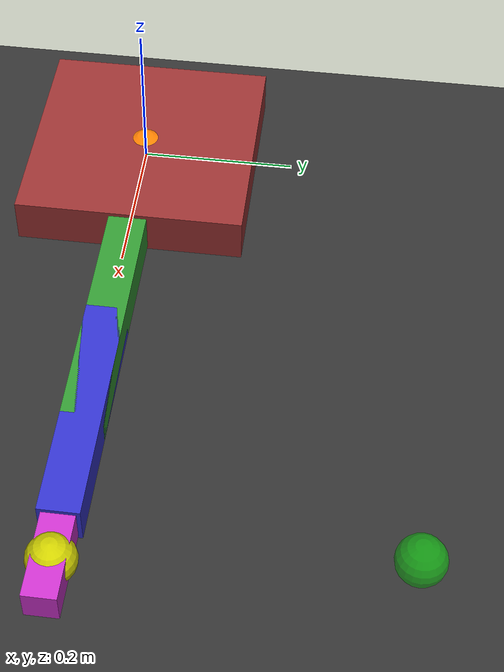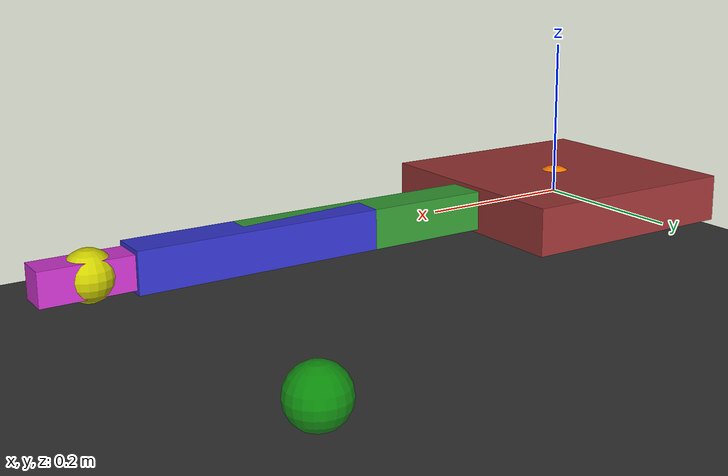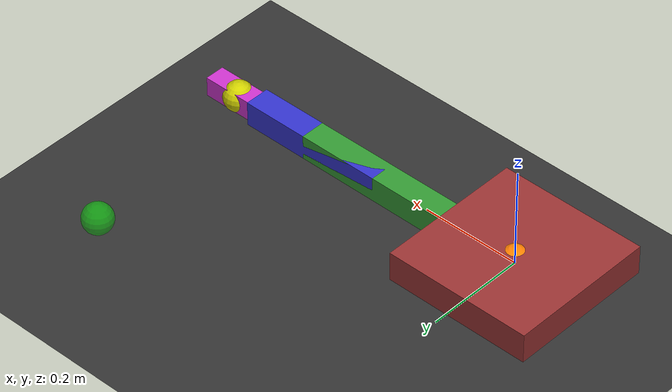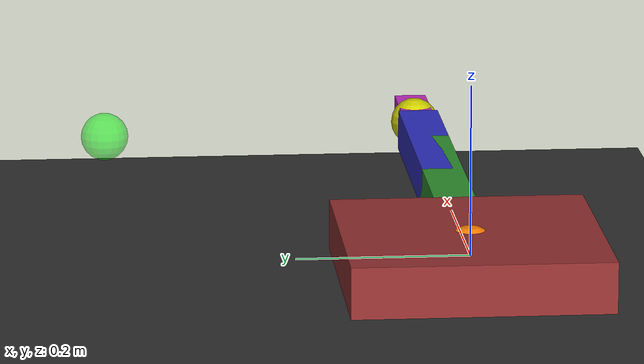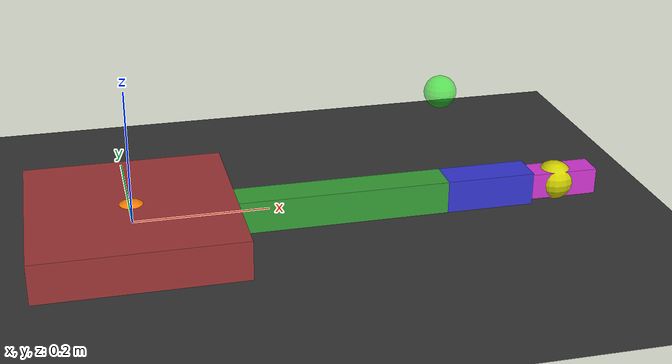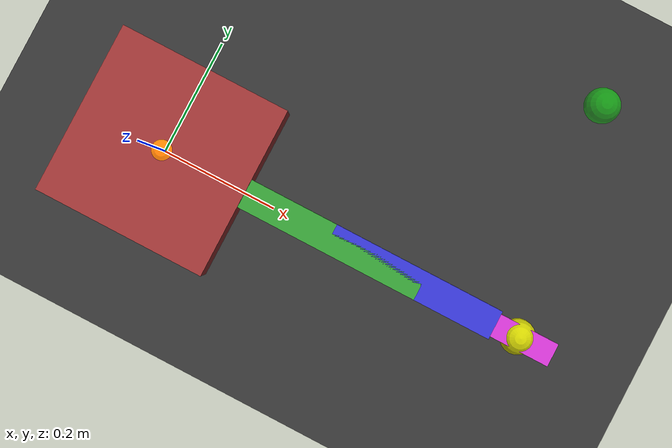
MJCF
<mujoco model="2d_arm_floating_base">
  <compiler angle="degree" coordinate="local"/>
  <option timestep="0.005" gravity="0 0 -9.81" iterations="30" tolerance="1e-8"/>

  <default>
    <joint limited="true" damping="0.5"/>
    <geom friction="0.3 0.005 0.0001" solimp="0.9 0.95 0.001" solref="0.02 1"/>
  </default>

  <worldbody>
    <light name="light" pos="0 0 2" dir="0 0 -1" directional="true"/>
    <geom name="ground" type="plane" pos="0 0 -0.1" size="5 5 0.1" rgba="0.2 0.2 0.2 1"/>

    <body name="base" pos="0 0 0">
      <joint name="base_x" type="slide" axis="1 0 0" range="-2 2" damping="5.0"/>
      <joint name="base_y" type="slide" axis="0 1 0" range="-2 2" damping="5.0"/>
      <joint name="base_rot" type="hinge" axis="0 0 1" range="-180 180" damping="2.0"/>
      <geom name="base_geom" type="box" size="0.15 0.15 0.03" rgba="0.6 0.2 0.2 1" mass="2.0"/>

      <body name="link1" pos="0.2 0 0">
        <joint name="joint1" type="hinge" axis="0 0 1" range="-180 180" damping="0.5"/>
        <geom name="link1_geom" type="box" size="0.18 0.025 0.025" rgba="0.2 0.6 0.2 1" mass="0.8" pos="0.09 0 0"/>
        <body name="link2" pos="0.18 0 0">
          <joint name="joint2" type="hinge" axis="0 0 1" range="-180 180" damping="0.5"/>
          <geom name="link2_geom" type="box" size="0.15 0.025 0.025" rgba="0.2 0.2 0.8 1" mass="0.6" pos="0.075 0 0"/>
          <body name="link3" pos="0.15 0 0">
            <joint name="joint3" type="hinge" axis="0 0 1" range="-180 180" damping="0.5"/>
            <geom name="link3_geom" type="box" size="0.12 0.02 0.02" rgba="0.8 0.2 0.8 1" mass="0.4" pos="0.06 0 0"/>
            <body name="end_effector" pos="0.12 0 0">
              <geom name="gripper" type="sphere" size="0.03" rgba="0.8 0.8 0 1" mass="0.02"/>
              <site name="eef_site" pos="0 0 0"/>
            </body>
          </body>
        </body>
      </body>
    </body>

    <body name="object" pos="0 0 0">
      <joint name="obj_x" type="slide" axis="1 0 0" range="-5 5" damping="100.0"/>
      <joint name="obj_y" type="slide" axis="0 1 0" range="-5 5" damping="100.0"/>
      <geom name="object_geom" type="sphere" size="0.035" rgba="1 0.5 0 1" mass="0.1"/>
      <site name="object_site" pos="0 0 0"/>
    </body>

    <site name="target_site" pos="0.6 0.4 0" size="0.03" rgba="0 1 0 0.5" type="sphere"/>
  </worldbody>

  <actuator>
    <motor name="joint1_motor" joint="joint1" gear="100" ctrlrange="-20 20"/>
    <motor name="joint2_motor" joint="joint2" gear="80" ctrlrange="-20 20"/>
    <motor name="joint3_motor" joint="joint3" gear="60" ctrlrange="-20 20"/>
  </actuator>
</mujoco>
